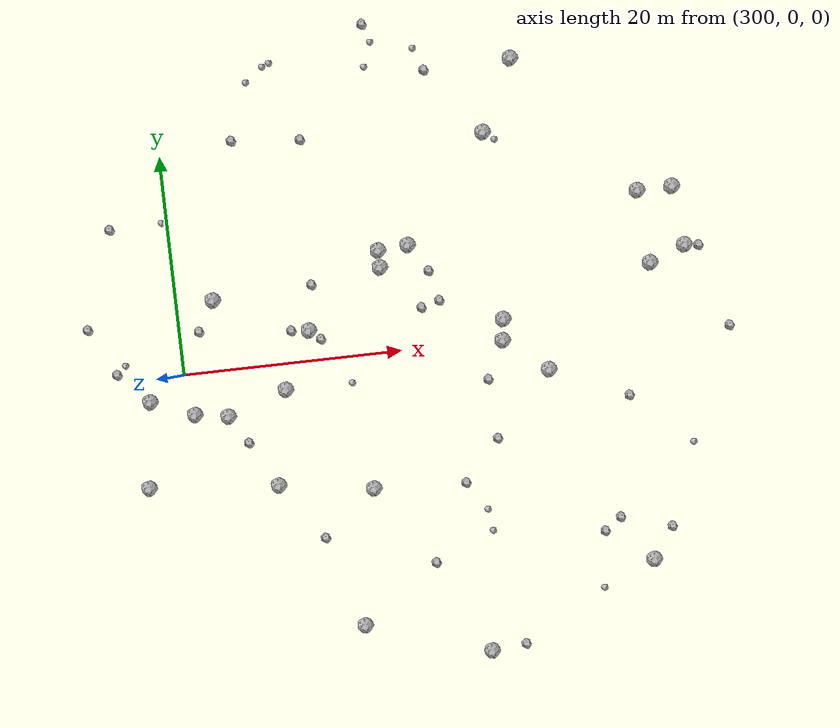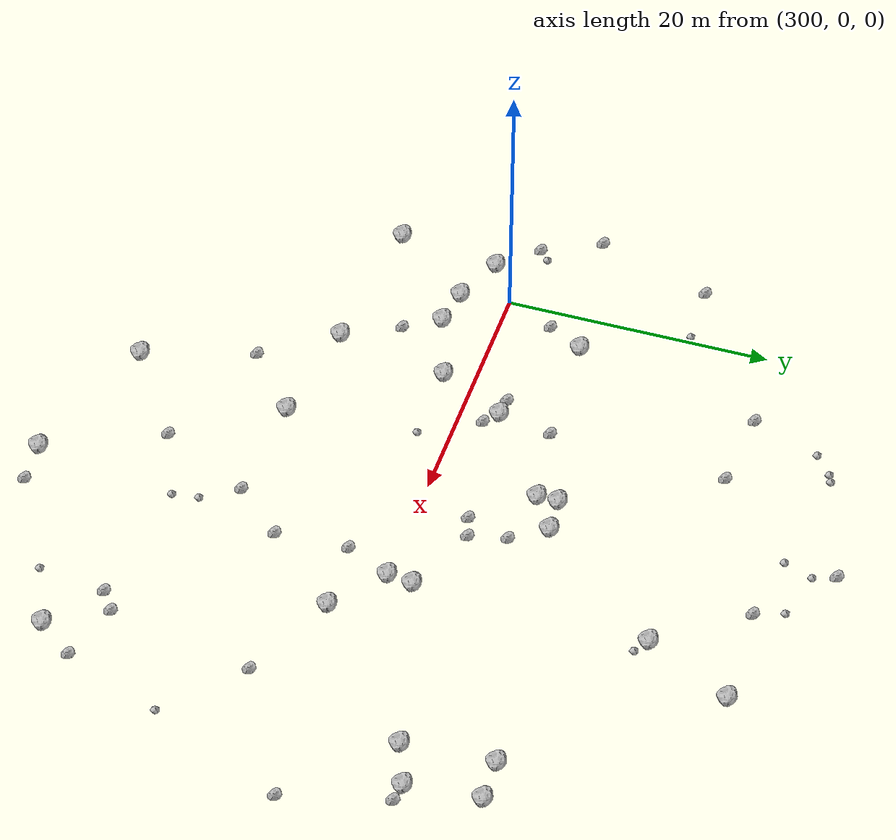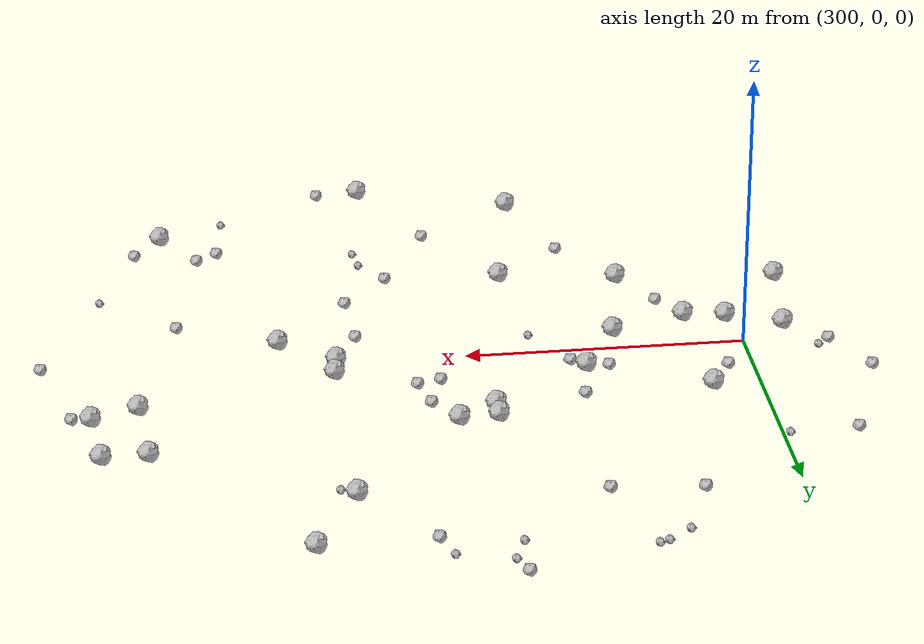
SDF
<sdf version="1.6">
 <world name="default">
  <include><uri>model://sun</uri></include>
  <model name="rock1_8_3">
   <include><uri>model://rock1</uri><pose>318.8663881432591 7.754081669859495 0.5 0 0 0</pose></include>
  </model>
  <model name="rock1_8_4">
   <include><uri>model://rock1</uri><pose>307.5161722507399 -10.903873150700434 0.5 0 0 0</pose></include>
  </model>
  <model name="rock1_8_5">
   <include><uri>model://rock1</uri><pose>332.77409792564015 25.318539796383348 0.5 0 0 0</pose></include>
  </model>
  <model name="rock1_8_6">
   <include><uri>model://rock1</uri><pose>346.6034255031782 6.711135251918726 0.5 0 0 0</pose></include>
  </model>
  <model name="rock1_8_7">
   <include><uri>model://rock1</uri><pose>325.08773320329203 -27.9833462567788 0.5 0 0 0</pose></include>
  </model>
  <model name="rock1_8_8">
   <include><uri>model://rock1</uri><pose>318.87552269974816 9.302118053560953 0.5 0 0 0</pose></include>
  </model>
  <model name="rock1_8_9">
   <include><uri>model://rock1</uri><pose>303.4402022385598 6.477201955346324 0.5 0 0 0</pose></include>
  </model>
  <model name="rock1_8_10">
   <include><uri>model://rock1</uri><pose>311.8116510563375 2.7820783878514064 0.5 0 0 0</pose></include>
  </model>
  <model name="rock1_8_11">
   <include><uri>model://rock1</uri><pose>343.3240352177479 5.438199717730505 0.5 0 0 0</pose></include>
  </model>
  <model name="rock1_8_12">
   <include><uri>model://rock1</uri><pose>300.67654205719094 -3.6778417940097015 0.5 0 0 0</pose></include>
  </model>
  <model name="rock1_8_13">
   <include><uri>model://rock1</uri><pose>329.4718552680835 1.8257965105635776 0.5 0 0 0</pose></include>
  </model>
  <model name="rock1_8_14">
   <include><uri>model://rock1</uri><pose>321.6119412062313 9.491035620721789 0.5 0 0 0</pose></include>
  </model>
  <model name="rock1_8_15">
   <include><uri>model://rock1</uri><pose>342.8876173568217 12.081795682614633 0.5 0 0 0</pose></include>
  </model>
  <model name="rock1_8_16">
   <include><uri>model://rock1</uri><pose>329.53910840366007 18.91587456354126 0.5 0 0 0</pose></include>
  </model>
  <model name="rock1_8_17">
   <include><uri>model://rock1</uri><pose>295.79951704513564 -9.85798981866374 0.5 0 0 0</pose></include>
  </model>
  <model name="rock1_8_18">
   <include><uri>model://rock1</uri><pose>333.1057555694661 -3.1739508668871466 0.5 0 0 0</pose></include>
  </model>
  <model name="rock1_8_19">
   <include><uri>model://rock1</uri><pose>303.67539967739316 -4.167592207355476 0.5 0 0 0</pose></include>
  </model>
  <model name="rock1_8_20">
   <include><uri>model://rock1</uri><pose>296.7611860978618 -2.08018189703062 0.5 0 0 0</pose></include>
  </model>
  <model name="rock1_8_21">
   <include><uri>model://rock1</uri><pose>346.0624438060082 12.120095820532 0.5 0 0 0</pose></include>
  </model>
  <model name="rock1_8_22">
   <include><uri>model://rock1</uri><pose>340.6780010094019 -21.387153756961347 0.5 0 0 0</pose></include>
  </model>
  <model name="rock1_8_23">
   <include><uri>model://rock1</uri><pose>313.89841238087837 -24.40969589430038 0.5 0 0 0</pose></include>
  </model>
  <model name="rock1_8_24">
   <include><uri>model://rock1</uri><pose>316.07552969563 -12.145629018579719 0.5 0 0 0</pose></include>
  </model>
  <model name="rock1_8_25">
   <include><uri>model://rock1</uri><pose>329.2085702422617 -0.07992154818182229 0.5 0 0 0</pose></include>
  </model>
  <model name="rock1_8_26">
   <include><uri>model://rock1</uri><pose>309.12338880498896 -2.3275016594145406 0.5 0 0 0</pose></include>
  </model>
  <model name="rock2_8_0">
   <include><uri>model://rock2</uri><pose>336.548152830942 -18.35857411665721 0.3 0 0 0</pose></include>
  </model>
  <model name="rock2_8_1">
   <include><uri>model://rock2</uri><pose>338.0898747501852 -17.264391083494218 0.3 0 0 0</pose></include>
  </model>
  <model name="rock2_8_2">
   <include><uri>model://rock2</uri><pose>305.22822830328795 -6.769435457987662 0.3 0 0 0</pose></include>
  </model>
  <model name="rock2_8_3">
   <include><uri>model://rock2</uri><pose>327.5163802431223 -3.467463706833616 0.3 0 0 0</pose></include>
  </model>
  <model name="rock2_8_4">
   <include><uri>model://rock2</uri><pose>320.9494569542775 -19.494778174836462 0.3 0 0 0</pose></include>
  </model>
  <model name="rock2_8_5">
   <include><uri>model://rock2</uri><pose>312.48181459929384 6.896468450503946 0.3 0 0 0</pose></include>
  </model>
  <model name="rock2_8_6">
   <include><uri>model://rock2</uri><pose>324.82716474574204 25.15535922174125 0.3 0 0 0</pose></include>
  </model>
  <model name="rock2_8_7">
   <include><uri>model://rock2</uri><pose>312.93145797464246 20.12729869110548 0.3 0 0 0</pose></include>
  </model>
  <model name="rock2_8_8">
   <include><uri>model://rock2</uri><pose>347.8864993986697 6.5377632703741 0.3 0 0 0</pose></include>
  </model>
  <model name="rock2_8_9">
   <include><uri>model://rock2</uri><pose>319.6901818279299 29.921595128091916 0.3 0 0 0</pose></include>
  </model>
  <model name="rock2_8_10">
   <include><uri>model://rock2</uri><pose>342.6598266151518 -18.607472922326878 0.3 0 0 0</pose></include>
  </model>
  <model name="rock2_8_11">
   <include><uri>model://rock2</uri><pose>323.2225200160011 6.961498568358095 0.3 0 0 0</pose></include>
  </model>
  <model name="rock2_8_12">
   <include><uri>model://rock2</uri><pose>310.19584659310794 2.9329840894547274 0.3 0 0 0</pose></include>
  </model>
  <model name="rock2_8_13">
   <include><uri>model://rock2</uri><pose>327.77647098411364 -8.886112738542707 0.3 0 0 0</pose></include>
  </model>
  <model name="rock2_8_14">
   <include><uri>model://rock2</uri><pose>312.795542940118 1.8836612772870467 0.3 0 0 0</pose></include>
  </model>
  <model name="rock2_8_15">
   <include><uri>model://rock2</uri><pose>328.2431074014482 -27.74420588949116 0.3 0 0 0</pose></include>
  </model>
  <model name="rock2_8_16">
   <include><uri>model://rock2</uri><pose>340.1275413686589 -6.332564810851306 0.3 0 0 0</pose></include>
  </model>
  <model name="rock2_8_17">
   <include><uri>model://rock2</uri><pose>294.00499106910183 0.7134618003602782 0.3 0 0 0</pose></include>
  </model>
  <model name="rock2_8_18">
   <include><uri>model://rock2</uri><pose>301.84090791042405 3.785789833585511 0.3 0 0 0</pose></include>
  </model>
  <model name="rock2_8_19">
   <include><uri>model://rock2</uri><pose>306.6846630112727 20.711838491450294 0.3 0 0 0</pose></include>
  </model>
  <model name="rock2_8_20">
   <include><uri>model://rock2</uri><pose>322.2097348041635 3.7067302840166576 0.3 0 0 0</pose></include>
  </model>
  <model name="rock2_8_21">
   <include><uri>model://rock2</uri><pose>349.883375447915 -1.0302010706299711 0.3 0 0 0</pose></include>
  </model>
  <model name="rock2_8_22">
   <include><uri>model://rock2</uri><pose>324.4614069371339 -12.582186078890583 0.3 0 0 0</pose></include>
  </model>
  <model name="rock2_8_23">
   <include><uri>model://rock2</uri><pose>323.8876355085838 4.179167118829092 0.3 0 0 0</pose></include>
  </model>
  <model name="rock2_8_24">
   <include><uri>model://rock2</uri><pose>294.7919625013494 13.891604290054794 0.3 0 0 0</pose></include>
  </model>
  <model name="rock2_8_25">
   <include><uri>model://rock2</uri><pose>291.80704074638726 5.050493427537319 0.3 0 0 0</pose></include>
  </model>
  <model name="rock2_8_26">
   <include><uri>model://rock2</uri><pose>311.18965737679144 -16.141692448458773 0.3 0 0 0</pose></include>
  </model>
  <model name="rock3_8_0">
   <include><uri>model://rock3</uri><pose>345.4446049100757 -11.226406275894256 0.2 0 0 0</pose></include>
  </model>
  <model name="rock3_8_1">
   <include><uri>model://rock3</uri><pose>326.39914809136775 -17.210327182785555 0.2 0 0 0</pose></include>
  </model>
  <model name="rock3_8_2">
   <include><uri>model://rock3</uri><pose>308.5828361464801 25.81886812063042 0.2 0 0 0</pose></include>
  </model>
  <model name="rock3_8_3">
   <include><uri>model://rock3</uri><pose>310.2125401304876 27.087884489624365 0.2 0 0 0</pose></include>
  </model>
  <model name="rock3_8_4">
   <include><uri>model://rock3</uri><pose>315.17184007509786 -2.4148957736996763 0.2 0 0 0</pose></include>
  </model>
  <model name="rock3_8_5">
   <include><uri>model://rock3</uri><pose>294.8244780604402 1.4328414192214325 0.2 0 0 0</pose></include>
  </model>
  <model name="rock3_8_6">
   <include><uri>model://rock3</uri><pose>330.4998993448037 18.164402920982347 0.2 0 0 0</pose></include>
  </model>
  <model name="rock3_8_7">
   <include><uri>model://rock3</uri><pose>299.53625147310873 13.991630525060167 0.2 0 0 0</pose></include>
  </model>
  <model name="rock3_8_8">
   <include><uri>model://rock3</uri><pose>326.13546535606133 -15.242993436690684 0.2 0 0 0</pose></include>
  </model>
  <model name="rock3_8_9">
   <include><uri>model://rock3</uri><pose>324.021775775151 27.23688524671669 0.2 0 0 0</pose></include>
  </model>
  <model name="rock3_8_10">
   <include><uri>model://rock3</uri><pose>310.87698476468125 27.344834047324476 0.2 0 0 0</pose></include>
  </model>
  <model name="rock3_8_11">
   <include><uri>model://rock3</uri><pose>319.43597266122714 26.04595500165678 0.2 0 0 0</pose></include>
  </model>
  <model name="rock3_8_12">
   <include><uri>model://rock3</uri><pose>335.8831490244578 -23.505638460818318 0.2 0 0 0</pose></include>
  </model>
  <model name="rock3_8_13">
   <include><uri>model://rock3</uri><pose>320.2501777844005 28.22719571942556 0.2 0 0 0</pose></include>
  </model>
 </world>
</sdf>
